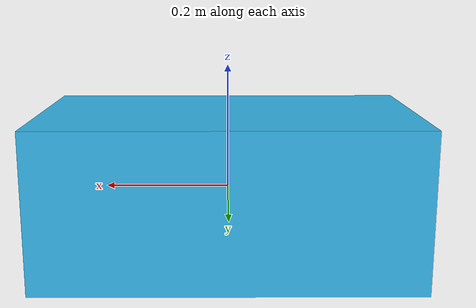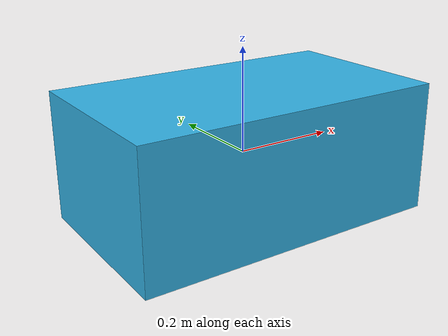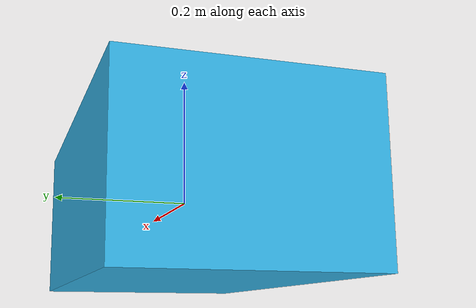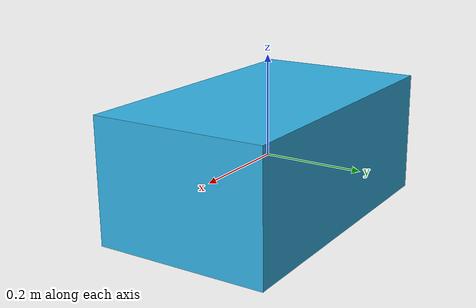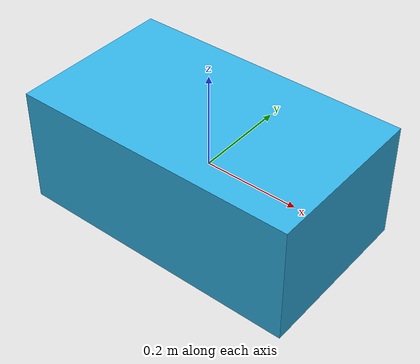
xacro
<?xml version="1.0"?>
<robot xmlns:xacro="http://www.ros.org/wiki/xacro" name="simple_box">
  <xacro:property name="box_length" value="0.6"/>
  <xacro:property name="box_width" value="0.35"/>
  <xacro:property name="box_height" value="0.25"/>
  <xacro:property name="red" value="0.2"/>
  <xacro:property name="green" value="0.7"/>
  <xacro:property name="blue" value="0.9"/>

  <link name="base_link">
    <visual>
      <geometry>
        <box size="${box_length} ${box_width} ${box_height}"/>
      </geometry>
      <material name="custom_color">
        <color rgba="${red} ${green} ${blue} 1"/>
      </material>
    </visual>
  </link>
</robot>
